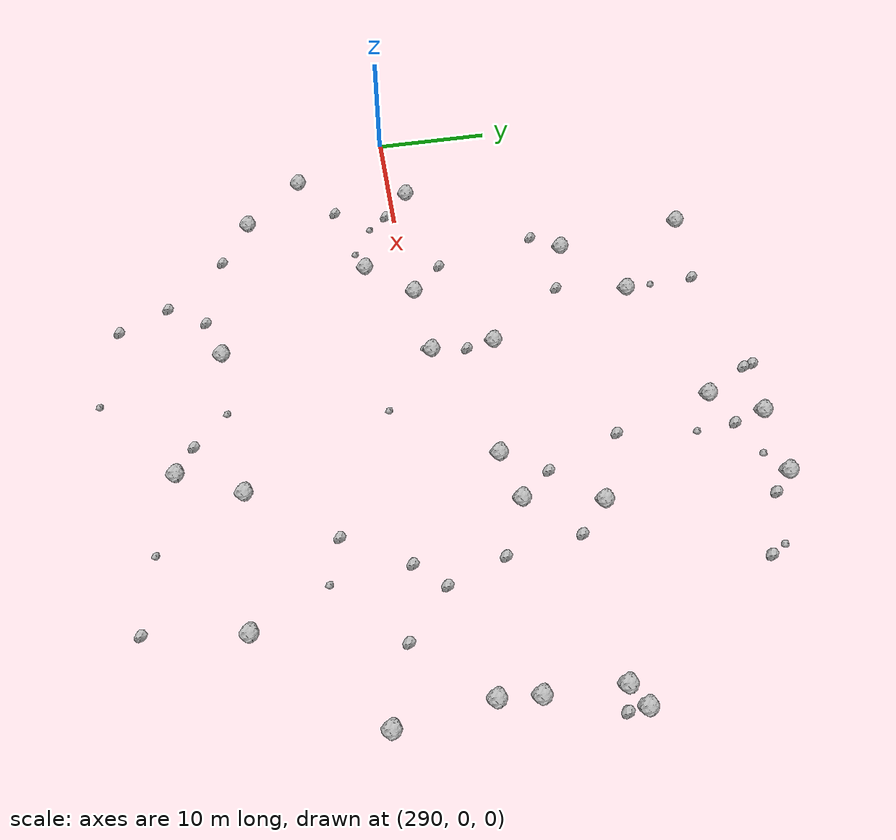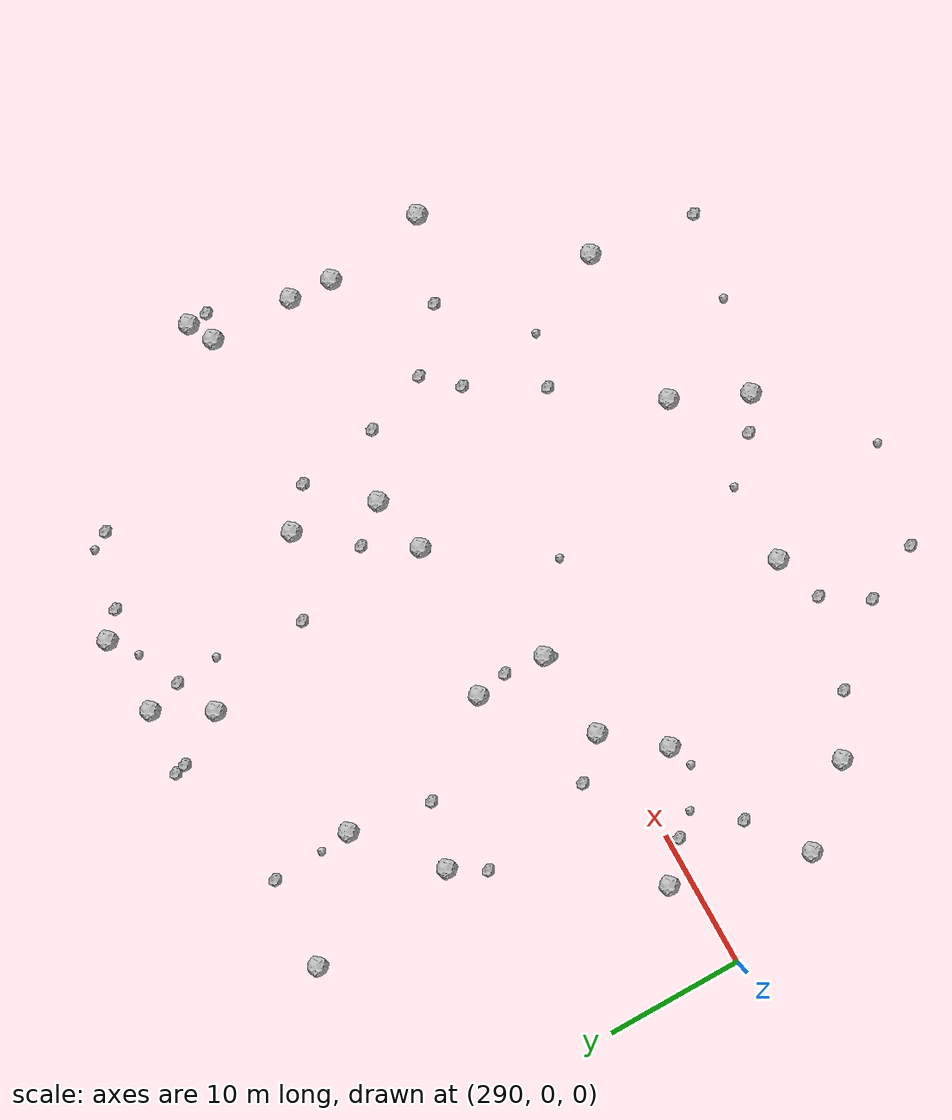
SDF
<sdf version="1.6">
 <world name="default">
  <include><uri>model://sun</uri></include>
  <model name="rock1_8_2">
   <include><uri>model://rock1</uri><pose>331.0558558053228 12.170179611438456 0.5 0 0 0</pose></include>
  </model>
  <model name="rock1_8_3">
   <include><uri>model://rock1</uri><pose>325.72892045598513 4.96400485102194 0.5 0 0 0</pose></include>
  </model>
  <model name="rock1_8_4">
   <include><uri>model://rock1</uri><pose>305.5403927274977 14.267890851970485 0.5 0 0 0</pose></include>
  </model>
  <model name="rock1_8_5">
   <include><uri>model://rock1</uri><pose>298.6387728408002 -13.172379463434662 0.5 0 0 0</pose></include>
  </model>
  <model name="rock1_8_6">
   <include><uri>model://rock1</uri><pose>314.8516880732757 6.4923811350785385 0.5 0 0 0</pose></include>
  </model>
  <model name="rock1_8_7">
   <include><uri>model://rock1</uri><pose>337.6282672875542 -15.294259612341891 0.5 0 0 0</pose></include>
  </model>
  <model name="rock1_8_8">
   <include><uri>model://rock1</uri><pose>311.0805451639051 18.923274675456227 0.5 0 0 0</pose></include>
  </model>
  <model name="rock1_8_9">
   <include><uri>model://rock1</uri><pose>305.27096158632804 -3.2655775731238883 0.5 0 0 0</pose></include>
  </model>
  <model name="rock1_8_10">
   <include><uri>model://rock1</uri><pose>345.3448835433931 10.350380426157514 0.5 0 0 0</pose></include>
  </model>
  <model name="rock1_8_11">
   <include><uri>model://rock1</uri><pose>294.13858697065797 -8.232217718515187 0.5 0 0 0</pose></include>
  </model>
  <model name="rock1_8_12">
   <include><uri>model://rock1</uri><pose>296.9808074926783 1.4914572130452939 0.5 0 0 0</pose></include>
  </model>
  <model name="rock1_8_13">
   <include><uri>model://rock1</uri><pose>326.21780883197505 -15.04798436290018 0.5 0 0 0</pose></include>
  </model>
  <model name="rock1_8_14">
   <include><uri>model://rock1</uri><pose>345.93771841691427 -6.19586888937414 0.5 0 0 0</pose></include>
  </model>
  <model name="rock1_8_15">
   <include><uri>model://rock1</uri><pose>314.9888064754124 1.2018420457973562 0.5 0 0 0</pose></include>
  </model>
  <model name="rock1_8_16">
   <include><uri>model://rock1</uri><pose>329.94723840371745 5.944854624017971 0.5 0 0 0</pose></include>
  </model>
  <model name="rock1_8_17">
   <include><uri>model://rock1</uri><pose>325.09504252500113 26.72436318498025 0.5 0 0 0</pose></include>
  </model>
  <model name="rock1_8_18">
   <include><uri>model://rock1</uri><pose>345.1960327038847 4.320287657397891 0.5 0 0 0</pose></include>
  </model>
  <model name="rock1_8_19">
   <include><uri>model://rock1</uri><pose>344.942783251985 1.206976844670102 0.5 0 0 0</pose></include>
  </model>
  <model name="rock1_8_20">
   <include><uri>model://rock1</uri><pose>308.5693430140177 0.6367123534257182 0.5 0 0 0</pose></include>
  </model>
  <model name="rock1_8_21">
   <include><uri>model://rock1</uri><pose>304.07562159992676 25.296890691119543 0.5 0 0 0</pose></include>
  </model>
  <model name="rock1_8_22">
   <include><uri>model://rock1</uri><pose>330.7771974970975 26.916413327055395 0.5 0 0 0</pose></include>
  </model>
  <model name="rock1_8_23">
   <include><uri>model://rock1</uri><pose>323.7744071780747 -20.203930152373644 0.5 0 0 0</pose></include>
  </model>
  <model name="rock1_8_24">
   <include><uri>model://rock1</uri><pose>347.0866182954698 11.314414394804352 0.5 0 0 0</pose></include>
  </model>
  <model name="rock1_8_25">
   <include><uri>model://rock1</uri><pose>312.82954959344335 -16.165699790642414 0.5 0 0 0</pose></include>
  </model>
  <model name="rock1_8_26">
   <include><uri>model://rock1</uri><pose>322.8474161339932 22.801154708775194 0.5 0 0 0</pose></include>
  </model>
  <model name="rock2_8_0">
   <include><uri>model://rock2</uri><pose>299.45625878995094 -0.7102333887937995 0.3 0 0 0</pose></include>
  </model>
  <model name="rock2_8_1">
   <include><uri>model://rock2</uri><pose>333.5480469742515 9.86877233529853 0.3 0 0 0</pose></include>
  </model>
  <model name="rock2_8_2">
   <include><uri>model://rock2</uri><pose>309.13364598480973 -24.608910042733292 0.3 0 0 0</pose></include>
  </model>
  <model name="rock2_8_3">
   <include><uri>model://rock2</uri><pose>309.2200223889908 -17.330443557185344 0.3 0 0 0</pose></include>
  </model>
  <model name="rock2_8_4">
   <include><uri>model://rock2</uri><pose>334.0239487381773 -3.0613930425067757 0.3 0 0 0</pose></include>
  </model>
  <model name="rock2_8_5">
   <include><uri>model://rock2</uri><pose>321.43890028993604 -18.728286592470365 0.3 0 0 0</pose></include>
  </model>
  <model name="rock2_8_6">
   <include><uri>model://rock2</uri><pose>320.6434857953137 26.49320081392095 0.3 0 0 0</pose></include>
  </model>
  <model name="rock2_8_7">
   <include><uri>model://rock2</uri><pose>336.53938869631645 -22.907724349156858 0.3 0 0 0</pose></include>
  </model>
  <model name="rock2_8_8">
   <include><uri>model://rock2</uri><pose>307.21499730208524 -20.49417734437319 0.3 0 0 0</pose></include>
  </model>
  <model name="rock2_8_9">
   <include><uri>model://rock2</uri><pose>306.0146336913848 3.2130032346350745 0.3 0 0 0</pose></include>
  </model>
  <model name="rock2_8_10">
   <include><uri>model://rock2</uri><pose>337.38759452634156 23.37911308772749 0.3 0 0 0</pose></include>
  </model>
  <model name="rock2_8_11">
   <include><uri>model://rock2</uri><pose>320.43588471791065 27.305620475935633 0.3 0 0 0</pose></include>
  </model>
  <model name="rock2_8_12">
   <include><uri>model://rock2</uri><pose>325.81122513733334 24.1590341535331 0.3 0 0 0</pose></include>
  </model>
  <model name="rock2_8_13">
   <include><uri>model://rock2</uri><pose>332.38115653278913 25.39978417269088 0.3 0 0 0</pose></include>
  </model>
  <model name="rock2_8_14">
   <include><uri>model://rock2</uri><pose>336.1048072305974 -0.7926792201496511 0.3 0 0 0</pose></include>
  </model>
  <model name="rock2_8_15">
   <include><uri>model://rock2</uri><pose>327.8199837180158 8.491111972240574 0.3 0 0 0</pose></include>
  </model>
  <model name="rock2_8_16">
   <include><uri>model://rock2</uri><pose>303.9931954936614 11.839615505432008 0.3 0 0 0</pose></include>
  </model>
  <model name="rock2_8_17">
   <include><uri>model://rock2</uri><pose>298.31999352270543 -5.218302435226519 0.3 0 0 0</pose></include>
  </model>
  <model name="rock2_8_18">
   <include><uri>model://rock2</uri><pose>325.3098389124317 14.554075935046171 0.3 0 0 0</pose></include>
  </model>
  <model name="rock2_8_19">
   <include><uri>model://rock2</uri><pose>339.9701926243923 -4.177991710192053 0.3 0 0 0</pose></include>
  </model>
  <model name="rock2_8_20">
   <include><uri>model://rock2</uri><pose>331.0355435002654 -8.1677869793725 0.3 0 0 0</pose></include>
  </model>
  <model name="rock2_8_21">
   <include><uri>model://rock2</uri><pose>310.6597123885084 24.956997692316243 0.3 0 0 0</pose></include>
  </model>
  <model name="rock2_8_22">
   <include><uri>model://rock2</uri><pose>310.0581460081997 12.90918609830149 0.3 0 0 0</pose></include>
  </model>
  <model name="rock2_8_23">
   <include><uri>model://rock2</uri><pose>334.46119256974123 3.8641210053700803 0.3 0 0 0</pose></include>
  </model>
  <model name="rock2_8_24">
   <include><uri>model://rock2</uri><pose>302.7101110564565 -15.656279663053489 0.3 0 0 0</pose></include>
  </model>
  <model name="rock2_8_25">
   <include><uri>model://rock2</uri><pose>347.15440071601205 9.885016423579742 0.3 0 0 0</pose></include>
  </model>
  <model name="rock2_8_26">
   <include><uri>model://rock2</uri><pose>315.25342783727183 4.171786192156041 0.3 0 0 0</pose></include>
  </model>
  <model name="rock3_8_0">
   <include><uri>model://rock3</uri><pose>310.77581063920866 21.183341518938157 0.2 0 0 0</pose></include>
  </model>
  <model name="rock3_8_1">
   <include><uri>model://rock3</uri><pose>326.0249463108673 20.947460465411766 0.2 0 0 0</pose></include>
  </model>
  <model name="rock3_8_2">
   <include><uri>model://rock3</uri><pose>320.3127152592876 -3.0765155735050165 0.2 0 0 0</pose></include>
  </model>
  <model name="rock3_8_3">
   <include><uri>model://rock3</uri><pose>336.63708057067277 24.624098934547902 0.2 0 0 0</pose></include>
  </model>
  <model name="rock3_8_4">
   <include><uri>model://rock3</uri><pose>328.8032077116429 25.52896341782312 0.2 0 0 0</pose></include>
  </model>
  <model name="rock3_8_5">
   <include><uri>model://rock3</uri><pose>314.5963443023498 0.6238413945410315 0.2 0 0 0</pose></include>
  </model>
  <model name="rock3_8_6">
   <include><uri>model://rock3</uri><pose>318.63722543757035 -16.018652354367227 0.2 0 0 0</pose></include>
  </model>
  <model name="rock3_8_7">
   <include><uri>model://rock3</uri><pose>325.31684626411266 4.6608410769408835 0.2 0 0 0</pose></include>
  </model>
  <model name="rock3_8_8">
   <include><uri>model://rock3</uri><pose>300.6925828923299 -2.306277937485511 0.2 0 0 0</pose></include>
  </model>
  <model name="rock3_8_9">
   <include><uri>model://rock3</uri><pose>316.40173542561837 -26.159813580907553 0.2 0 0 0</pose></include>
  </model>
  <model name="rock3_8_10">
   <include><uri>model://rock3</uri><pose>330.38604904362245 -21.841804178195588 0.2 0 0 0</pose></include>
  </model>
  <model name="rock3_8_11">
   <include><uri>model://rock3</uri><pose>303.4272295029567 -3.92711638167539 0.2 0 0 0</pose></include>
  </model>
  <model name="rock3_8_12">
   <include><uri>model://rock3</uri><pose>334.6765266164943 -9.329208068266208 0.2 0 0 0</pose></include>
  </model>
 </world>
</sdf>
